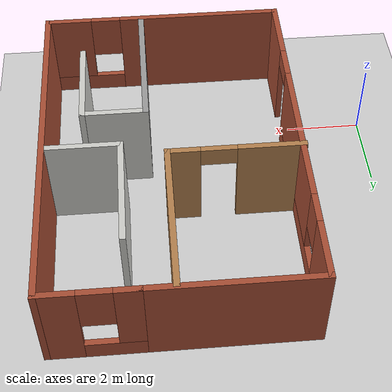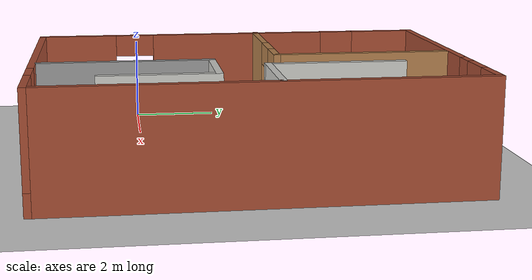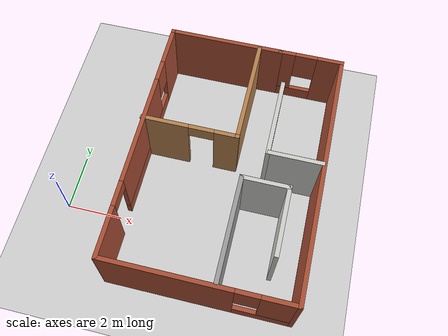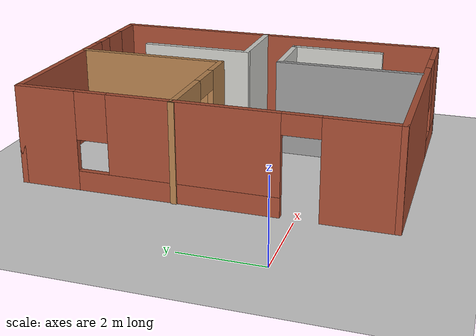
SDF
<sdf version="1.7">
 <world name="default">
  <light name="sun" type="directional">
   <pose>0 0 10 0 -0 0</pose>
   <diffuse>0.8 0.8 0.8 1</diffuse>
   <specular>0.2 0.2 0.2 1</specular>
   <attenuation>
    <range>1000</range>
    <constant>0.9</constant>
    <linear>0.01</linear>
    <quadratic>0.001</quadratic>
   </attenuation>
   <direction>-0.5 0.1 -0.9</direction>
   <spot><inner_angle>0</inner_angle><outer_angle>0</outer_angle><falloff>0</falloff></spot>
  </light>
  <model name="ground_plane">
   <static>1</static>
   <link name="link">
    <collision name="collision">
     <geometry><plane><normal>0 0 1</normal><size>100 100</size></plane></geometry>
     <surface><friction><ode><mu>100</mu><mu2>50</mu2></ode></friction></surface>
    </collision>
    <visual name="visual">
     <cast_shadows>0</cast_shadows>
     <geometry><plane><normal>0 0 1</normal><size>100 100</size></plane></geometry>
     <material>
      <script><uri>file://media/materials/scripts/gazebo.material</uri><name>Gazebo/Grey</name></script>
     </material>
    </visual>
   </link>
  </model>
  <gravity>0 0 -9.8</gravity>
  <magnetic_field>6e-06 2.3e-05 -4.2e-05</magnetic_field>
  <atmosphere type="adiabatic"/>
  <physics type="ode">
   <max_step_size>0.001</max_step_size>
   <real_time_factor>1</real_time_factor>
   <real_time_update_rate>1000</real_time_update_rate>
  </physics>
  <scene><ambient>0.4 0.4 0.4 1</ambient><background>0.7 0.7 0.7 1</background><shadows>1</shadows></scene>
  <audio><device>default</device></audio>
  <spherical_coordinates>
   <surface_model>EARTH_WGS84</surface_model>
   <latitude_deg>0</latitude_deg>
   <longitude_deg>0</longitude_deg>
   <elevation>0</elevation>
   <heading_deg>0</heading_deg>
  </spherical_coordinates>
  <model name="room2">
   <pose>5.37652 2.25881 0 0 0 -1.57084</pose>
   <link name="Wall_0">
    <collision name="Wall_0_Collision">
     <geometry><box><size>4.25 0.15 2.5</size></box></geometry>
     <pose>0 0 1.25 0 -0 0</pose>
    </collision>
    <visual name="Wall_0_Visual">
     <pose>0 0 1.25 0 -0 0</pose>
     <geometry><box><size>4.25 0.15 2.5</size></box></geometry>
     <material>
      <script><uri>file://media/materials/scripts/gazebo.material</uri><name>Gazebo/Bricks</name></script>
      <ambient>1 1 1 1</ambient>
     </material>
     <meta><layer>0</layer></meta>
    </visual>
    <pose>-4.55 -1.10508 0 0 -0 -1.5708</pose>
   </link>
   <link name="Wall_1">
    <pose>-0 -3.15508 0 0 -0 0</pose>
    <visual name="Wall_1_Visual_0">
     <pose>-3.84782 0 1.25 0 -0 0</pose>
     <geometry><box><size>1.55437 0.15 2.5</size></box></geometry>
     <material>
      <script><uri>file://media/materials/scripts/gazebo.material</uri><name>Gazebo/Bricks</name></script>
      <ambient>1 1 1 1</ambient>
     </material>
     <meta><layer>0</layer></meta>
    </visual>
    <collision name="Wall_1_Collision_0">
     <geometry><box><size>1.55437 0.15 2.5</size></box></geometry>
     <pose>-3.84782 0 1.25 0 -0 0</pose>
    </collision>
    <visual name="Wall_1_Visual_1">
     <pose>3.71201 0 1.25 0 -0 0</pose>
     <geometry><box><size>1.82598 0.15 2.5</size></box></geometry>
     <material>
      <script><uri>file://media/materials/scripts/gazebo.material</uri><name>Gazebo/Bricks</name></script>
      <ambient>1 1 1 1</ambient>
     </material>
     <meta><layer>0</layer></meta>
    </visual>
    <collision name="Wall_1_Collision_1">
     <geometry><box><size>1.82598 0.15 2.5</size></box></geometry>
     <pose>3.71201 0 1.25 0 -0 0</pose>
    </collision>
    <visual name="Wall_1_Visual_2">
     <pose>-0.585809 0 0.25 0 -0 0</pose>
     <geometry><box><size>4.96965 0.15 0.5</size></box></geometry>
     <material>
      <script><uri>file://media/materials/scripts/gazebo.material</uri><name>Gazebo/Bricks</name></script>
      <ambient>1 1 1 1</ambient>
     </material>
     <meta><layer>0</layer></meta>
    </visual>
    <collision name="Wall_1_Collision_2">
     <geometry><box><size>4.96965 0.15 0.5</size></box></geometry>
     <pose>-0.585809 0 0.25 0 -0 0</pose>
    </collision>
    <visual name="Wall_1_Visual_3">
     <pose>-0.185809 0 1.5 0 -0 0</pose>
     <geometry><box><size>4.16965 0.15 2</size></box></geometry>
     <material>
      <script><uri>file://media/materials/scripts/gazebo.material</uri><name>Gazebo/Bricks</name></script>
      <ambient>1 1 1 1</ambient>
     </material>
     <meta><layer>0</layer></meta>
    </visual>
    <collision name="Wall_1_Collision_3">
     <geometry><box><size>4.16965 0.15 2</size></box></geometry>
     <pose>-0.185809 0 1.5 0 -0 0</pose>
    </collision>
    <visual name="Wall_1_Visual_4">
     <pose>-2.67063 0 1.9 0 -0 0</pose>
     <geometry><box><size>0.8 0.15 1.2</size></box></geometry>
     <material>
      <script><uri>file://media/materials/scripts/gazebo.material</uri><name>Gazebo/Bricks</name></script>
      <ambient>1 1 1 1</ambient>
     </material>
     <meta><layer>0</layer></meta>
    </visual>
    <collision name="Wall_1_Collision_4">
     <geometry><box><size>0.8 0.15 1.2</size></box></geometry>
     <pose>-2.67063 0 1.9 0 -0 0</pose>
    </collision>
    <visual name="Wall_1_Visual_5">
     <pose>2.34902 0 2.25 0 -0 0</pose>
     <geometry><box><size>0.9 0.15 0.5</size></box></geometry>
     <material>
      <script><uri>file://media/materials/scripts/gazebo.material</uri><name>Gazebo/Bricks</name></script>
      <ambient>1 1 1 1</ambient>
     </material>
     <meta><layer>0</layer></meta>
    </visual>
    <collision name="Wall_1_Collision_5">
     <geometry><box><size>0.9 0.15 0.5</size></box></geometry>
     <pose>2.34902 0 2.25 0 -0 0</pose>
    </collision>
   </link>
   <link name="Wall_10">
    <collision name="Wall_10_Collision">
     <geometry><box><size>4 0.15 2.5</size></box></geometry>
     <pose>0 0 1.25 0 -0 0</pose>
    </collision>
    <visual name="Wall_10_Visual">
     <pose>0 0 1.25 0 -0 0</pose>
     <geometry><box><size>4 0.15 2.5</size></box></geometry>
     <material>
      <script><uri>file://media/materials/scripts/gazebo.material</uri><name>Gazebo/Wood</name></script>
      <ambient>1 1 1 1</ambient>
     </material>
     <meta><layer>0</layer></meta>
    </visual>
    <pose>-2.5646 0.155081 0 0 -0 0</pose>
   </link>
   <link name="Wall_11">
    <pose>-0.6396 -1.51992 0 0 -0 -1.5708</pose>
    <visual name="Wall_11_Visual_0">
     <pose>-1.30786 0 1.25 0 -0 0</pose>
     <geometry><box><size>0.884285 0.15 2.5</size></box></geometry>
     <material>
      <script><uri>file://media/materials/scripts/gazebo.material</uri><name>Gazebo/Wood</name></script>
      <ambient>1 1 1 1</ambient>
     </material>
     <meta><layer>0</layer></meta>
    </visual>
    <collision name="Wall_11_Collision_0">
     <geometry><box><size>0.884285 0.15 2.5</size></box></geometry>
     <pose>-1.30786 0 1.25 0 -0 0</pose>
    </collision>
    <visual name="Wall_11_Visual_1">
     <pose>0.892142 0 1.25 0 -0 0</pose>
     <geometry><box><size>1.71572 0.15 2.5</size></box></geometry>
     <material>
      <script><uri>file://media/materials/scripts/gazebo.material</uri><name>Gazebo/Wood</name></script>
      <ambient>1 1 1 1</ambient>
     </material>
     <meta><layer>0</layer></meta>
    </visual>
    <collision name="Wall_11_Collision_1">
     <geometry><box><size>1.71572 0.15 2.5</size></box></geometry>
     <pose>0.892142 0 1.25 0 -0 0</pose>
    </collision>
    <visual name="Wall_11_Visual_2">
     <pose>-0.415715 0 2.25 0 -0 0</pose>
     <geometry><box><size>0.9 0.15 0.5</size></box></geometry>
     <material>
      <script><uri>file://media/materials/scripts/gazebo.material</uri><name>Gazebo/Wood</name></script>
      <ambient>1 1 1 1</ambient>
     </material>
     <meta><layer>0</layer></meta>
    </visual>
    <collision name="Wall_11_Collision_2">
     <geometry><box><size>0.9 0.15 0.5</size></box></geometry>
     <pose>-0.415715 0 2.25 0 -0 0</pose>
    </collision>
   </link>
   <link name="Wall_13">
    <collision name="Wall_13_Collision">
     <geometry><box><size>2 0.15 2.5</size></box></geometry>
     <pose>0 0 1.25 0 -0 0</pose>
    </collision>
    <visual name="Wall_13_Visual">
     <pose>0 0 1.25 0 -0 0</pose>
     <geometry><box><size>2 0.15 2.5</size></box></geometry>
     <material>
      <script><uri>file://media/materials/scripts/gazebo.material</uri><name>Gazebo/CeilingTiled</name></script>
      <ambient>1 1 1 1</ambient>
     </material>
     <meta><layer>0</layer></meta>
    </visual>
    <pose>-0.291985 2.20339 0 0 -0 -1.5708</pose>
   </link>
   <link name="Wall_14">
    <collision name="Wall_14_Collision">
     <geometry><box><size>3 0.15 2.5</size></box></geometry>
     <pose>0 0 1.25 0 -0 0</pose>
    </collision>
    <visual name="Wall_14_Visual">
     <pose>0 0 1.25 0 -0 0</pose>
     <geometry><box><size>3 0.15 2.5</size></box></geometry>
     <material>
      <script><uri>file://media/materials/scripts/gazebo.material</uri><name>Gazebo/CeilingTiled</name></script>
      <ambient>1 1 1 1</ambient>
     </material>
     <meta><layer>0</layer></meta>
    </visual>
    <pose>-1.71698 1.27839 0 0 -0 3.14159</pose>
   </link>
   <link name="Wall_2">
    <pose>4.55 0.019919 0 0 -0 1.5708</pose>
    <visual name="Wall_2_Visual_0">
     <pose>-1.03158 0 1.25 0 -0 0</pose>
     <geometry><box><size>4.43684 0.15 2.5</size></box></geometry>
     <material>
      <script><uri>file://media/materials/scripts/gazebo.material</uri><name>Gazebo/Bricks</name></script>
      <ambient>1 1 1 1</ambient>
     </material>
     <meta><layer>0</layer></meta>
    </visual>
    <collision name="Wall_2_Collision_0">
     <geometry><box><size>4.43684 0.15 2.5</size></box></geometry>
     <pose>-1.03158 0 1.25 0 -0 0</pose>
    </collision>
    <visual name="Wall_2_Visual_1">
     <pose>2.21842 0 0.25 0 -0 0</pose>
     <geometry><box><size>2.06316 0.15 0.5</size></box></geometry>
     <material>
      <script><uri>file://media/materials/scripts/gazebo.material</uri><name>Gazebo/Bricks</name></script>
      <ambient>1 1 1 1</ambient>
     </material>
     <meta><layer>0</layer></meta>
    </visual>
    <collision name="Wall_2_Collision_1">
     <geometry><box><size>2.06316 0.15 0.5</size></box></geometry>
     <pose>2.21842 0 0.25 0 -0 0</pose>
    </collision>
    <visual name="Wall_2_Visual_2">
     <pose>2.61842 0 1.5 0 -0 0</pose>
     <geometry><box><size>1.26316 0.15 2</size></box></geometry>
     <material>
      <script><uri>file://media/materials/scripts/gazebo.material</uri><name>Gazebo/Bricks</name></script>
      <ambient>1 1 1 1</ambient>
     </material>
     <meta><layer>0</layer></meta>
    </visual>
    <collision name="Wall_2_Collision_2">
     <geometry><box><size>1.26316 0.15 2</size></box></geometry>
     <pose>2.61842 0 1.5 0 -0 0</pose>
    </collision>
    <visual name="Wall_2_Visual_3">
     <pose>1.58684 0 1.9 0 -0 0</pose>
     <geometry><box><size>0.8 0.15 1.2</size></box></geometry>
     <material>
      <script><uri>file://media/materials/scripts/gazebo.material</uri><name>Gazebo/Bricks</name></script>
      <ambient>1 1 1 1</ambient>
     </material>
     <meta><layer>0</layer></meta>
    </visual>
    <collision name="Wall_2_Collision_3">
     <geometry><box><size>0.8 0.15 1.2</size></box></geometry>
     <pose>1.58684 0 1.9 0 -0 0</pose>
    </collision>
   </link>
   <link name="Wall_3">
    <collision name="Wall_3_Collision">
     <geometry><box><size>9.25 0.15 2.5</size></box></geometry>
     <pose>0 0 1.25 0 -0 0</pose>
    </collision>
    <visual name="Wall_3_Visual">
     <pose>0 0 1.25 0 -0 0</pose>
     <geometry><box><size>9.25 0.15 2.5</size></box></geometry>
     <material>
      <script><uri>file://media/materials/scripts/gazebo.material</uri><name>Gazebo/Bricks</name></script>
      <ambient>1 1 1 1</ambient>
     </material>
     <meta><layer>0</layer></meta>
    </visual>
    <pose>-0 3.19492 0 0 -0 3.14159</pose>
   </link>
   <link name="Wall_4">
    <pose>-4.55 2.06992 0 0 -0 -1.5708</pose>
    <visual name="Wall_4_Visual_0">
     <pose>-0.717084 0 1.25 0 -0 0</pose>
     <geometry><box><size>0.965832 0.15 2.5</size></box></geometry>
     <material>
      <script><uri>file://media/materials/scripts/gazebo.material</uri><name>Gazebo/Bricks</name></script>
      <ambient>1 1 1 1</ambient>
     </material>
     <meta><layer>0</layer></meta>
    </visual>
    <collision name="Wall_4_Collision_0">
     <geometry><box><size>0.965832 0.15 2.5</size></box></geometry>
     <pose>-0.717084 0 1.25 0 -0 0</pose>
    </collision>
    <visual name="Wall_4_Visual_1">
     <pose>0.482916 0 0.25 0 -0 0</pose>
     <geometry><box><size>1.43417 0.15 0.5</size></box></geometry>
     <material>
      <script><uri>file://media/materials/scripts/gazebo.material</uri><name>Gazebo/Bricks</name></script>
      <ambient>1 1 1 1</ambient>
     </material>
     <meta><layer>0</layer></meta>
    </visual>
    <collision name="Wall_4_Collision_1">
     <geometry><box><size>1.43417 0.15 0.5</size></box></geometry>
     <pose>0.482916 0 0.25 0 -0 0</pose>
    </collision>
    <visual name="Wall_4_Visual_2">
     <pose>0.882916 0 1.5 0 -0 0</pose>
     <geometry><box><size>0.634168 0.15 2</size></box></geometry>
     <material>
      <script><uri>file://media/materials/scripts/gazebo.material</uri><name>Gazebo/Bricks</name></script>
      <ambient>1 1 1 1</ambient>
     </material>
     <meta><layer>0</layer></meta>
    </visual>
    <collision name="Wall_4_Collision_2">
     <geometry><box><size>0.634168 0.15 2</size></box></geometry>
     <pose>0.882916 0 1.5 0 -0 0</pose>
    </collision>
    <visual name="Wall_4_Visual_3">
     <pose>0.165832 0 1.9 0 -0 0</pose>
     <geometry><box><size>0.8 0.15 1.2</size></box></geometry>
     <material>
      <script><uri>file://media/materials/scripts/gazebo.material</uri><name>Gazebo/Bricks</name></script>
      <ambient>1 1 1 1</ambient>
     </material>
     <meta><layer>0</layer></meta>
    </visual>
    <collision name="Wall_4_Collision_3">
     <geometry><box><size>0.8 0.15 1.2</size></box></geometry>
     <pose>0.165832 0 1.9 0 -0 0</pose>
    </collision>
   </link>
   <link name="Wall_6">
    <collision name="Wall_6_Collision">
     <geometry><box><size>2.5 0.15 2.5</size></box></geometry>
     <pose>0 0 1.25 0 -0 0</pose>
    </collision>
    <visual name="Wall_6_Visual">
     <pose>0 0 1.25 0 -0 0</pose>
     <geometry><box><size>2.5 0.15 2.5</size></box></geometry>
     <material>
      <script><uri>file://media/materials/scripts/gazebo.material</uri><name>Gazebo/CeilingTiled</name></script>
      <ambient>1 1 1 1</ambient>
     </material>
     <meta><layer>0</layer></meta>
    </visual>
    <pose>1.99605 2.21891 0 0 -0 3.14159</pose>
   </link>
   <link name="Wall_7">
    <collision name="Wall_7_Collision">
     <geometry><box><size>1.75 0.15 2.5</size></box></geometry>
     <pose>0 0 1.25 0 -0 0</pose>
    </collision>
    <visual name="Wall_7_Visual">
     <pose>0 0 1.25 0 -0 0</pose>
     <geometry><box><size>1.75 0.15 2.5</size></box></geometry>
     <material>
      <script><uri>file://media/materials/scripts/gazebo.material</uri><name>Gazebo/CeilingTiled</name></script>
      <ambient>1 1 1 1</ambient>
     </material>
     <meta><layer>0</layer></meta>
    </visual>
    <pose>0.821048 1.41891 0 0 -0 -1.5708</pose>
   </link>
   <link name="Wall_8">
    <collision name="Wall_8_Collision">
     <geometry><box><size>3.75 0.15 2.5</size></box></geometry>
     <pose>0 0 1.25 0 -0 0</pose>
    </collision>
    <visual name="Wall_8_Visual">
     <pose>0 0 1.25 0 -0 0</pose>
     <geometry><box><size>3.75 0.15 2.5</size></box></geometry>
     <material>
      <script><uri>file://media/materials/scripts/gazebo.material</uri><name>Gazebo/Grey</name></script>
      <ambient>1 1 1 1</ambient>
     </material>
     <meta><layer>0</layer></meta>
    </visual>
    <pose>2.62105 0.618908 0 0 -0 0</pose>
   </link>
   <static>1</static>
  </model>
 </world>
</sdf>
